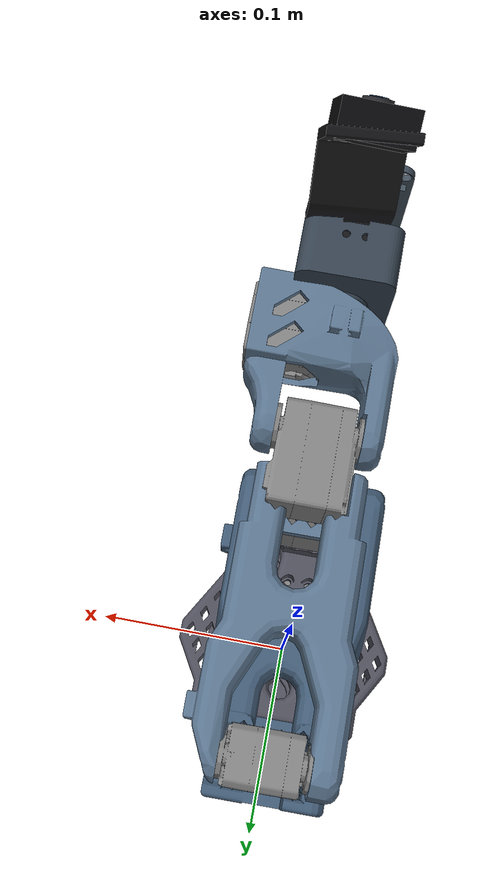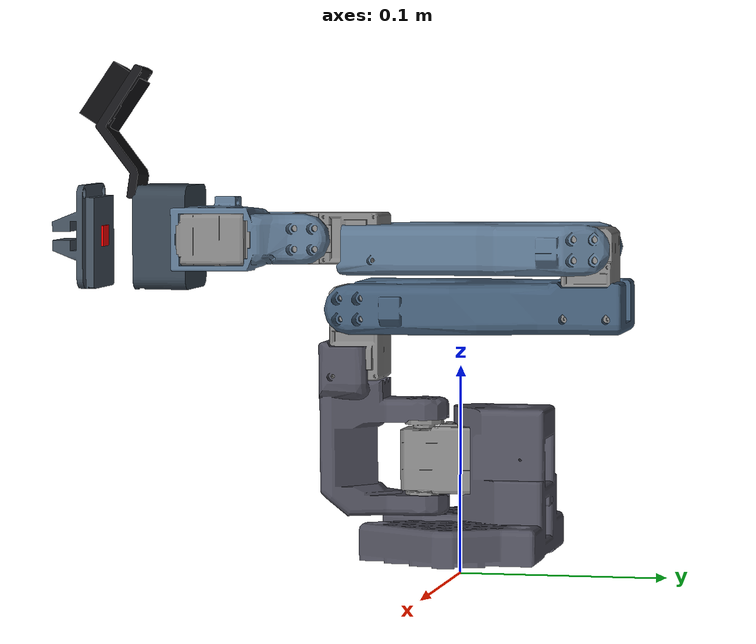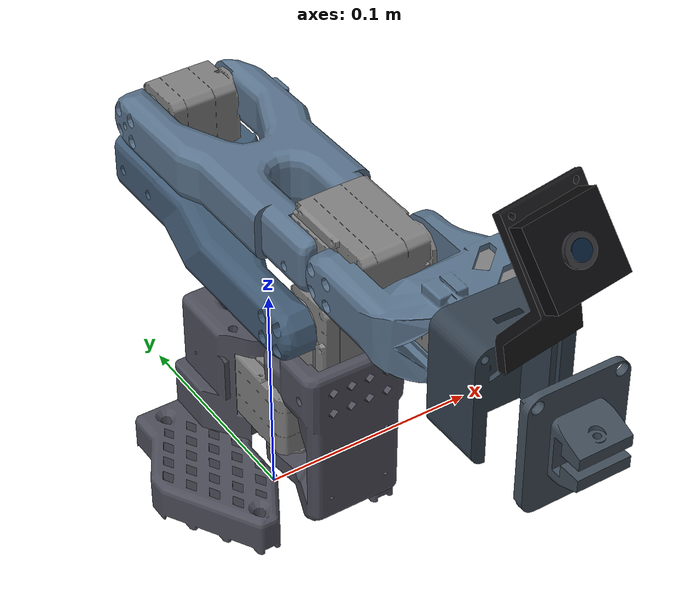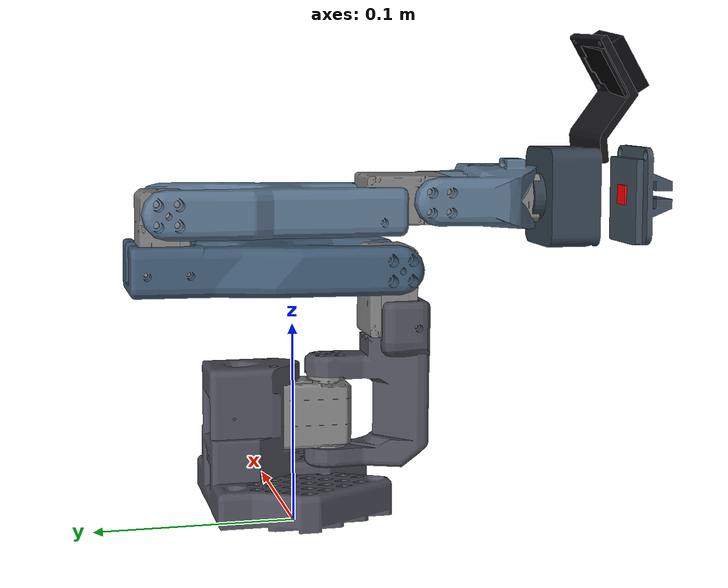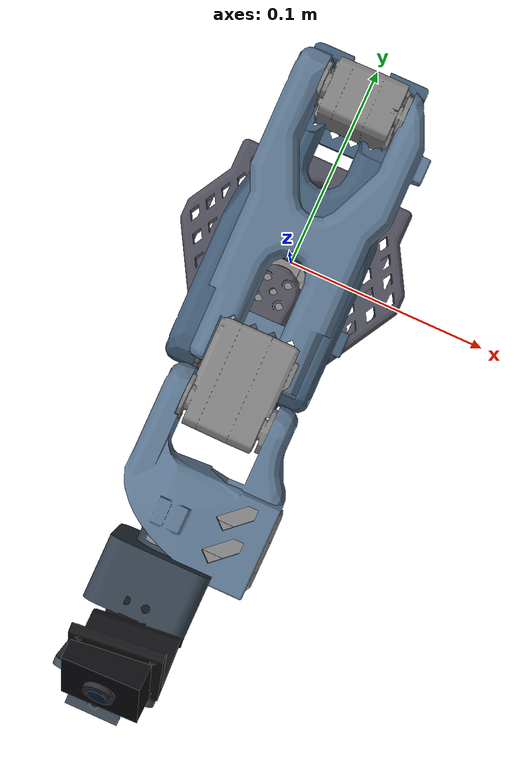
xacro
<?xml version="1.0"?>
<!--
SO-101 原机械臂的带末端相机副本。
原始 so101_arm.urdf.xacro 与 so101_arm_macro.urdf.xacro 保持不变。

用法:
  仅显示: xacro so101_arm_camera.urdf.xacro
  虚拟硬件: xacro so101_arm_camera.urdf.xacro use_fake_hardware:=true
-->
<robot name="so101_arm" xmlns:xacro="http://www.ros.org/wiki/xacro">

  <xacro:arg name="prefix" default=""/>
  <xacro:arg name="use_sim" default="false"/>
  <xacro:arg name="use_fake_hardware" default="false"/>

  <xacro:include filename="$(find so-101_description)/urdf/so101_arm_macro.urdf.xacro"/>
  <xacro:include filename="$(find so-101_description)/urdf/so101_camera_macro.urdf.xacro"/>
  <xacro:so101_arm prefix="$(arg prefix)"/>
  <xacro:so101_wrist_camera prefix="$(arg prefix)"/>

  <xacro:if value="$(arg use_fake_hardware)">
    <ros2_control name="FakeSystem" type="system">
      <hardware>
        <plugin>fake_components/GenericSystem</plugin>
      </hardware>
      <joint name="$(arg prefix)J1_Rotation">
        <command_interface name="position"/>
        <state_interface name="position"/>
        <state_interface name="velocity"/>
      </joint>
      <joint name="$(arg prefix)J2_Shoulder_Pitch">
        <command_interface name="position"/>
        <state_interface name="position"/>
        <state_interface name="velocity"/>
      </joint>
      <joint name="$(arg prefix)J3_Elbow_Pitch">
        <command_interface name="position"/>
        <state_interface name="position"/>
        <state_interface name="velocity"/>
      </joint>
      <joint name="$(arg prefix)J4_Wrist_Pitch">
        <command_interface name="position"/>
        <state_interface name="position"/>
        <state_interface name="velocity"/>
      </joint>
      <joint name="$(arg prefix)J5_Wrist_Roll">
        <command_interface name="position"/>
        <state_interface name="position"/>
        <state_interface name="velocity"/>
      </joint>
    </ros2_control>
  </xacro:if>

  <xacro:if value="$(arg use_sim)">
    <link name="world"/>
    <joint name="$(arg prefix)world_fixed" type="fixed">
      <origin xyz="0 0 0" rpy="0 0 0"/>
      <parent link="world"/>
      <child link="$(arg prefix)base_link"/>
    </joint>
  </xacro:if>

</robot>

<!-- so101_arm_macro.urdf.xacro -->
<robot xmlns:xacro="http://www.ros.org/wiki/xacro">

  <xacro:macro name="so101_arm" params="prefix:=''">
    <xacro:property name="body" value="package://so-101_description/urdf/so101_urdf/meshes"/>
    <xacro:property name="grip" value="package://so-101_description/urdf/end_effector_urdf/meshes"/>

    <!-- ===== base_footprint: 世界根节点 ===== -->
    <link name="${prefix}base_footprint"/>

    <!-- rpy="-1.5708 0 0" 使臂体从 CAD 水平转为竖直站立
         base_link Y → world -Z, base_link Z → world Y
         J1 轴用 base_link Y → world Z (yaw) -->
    <joint name="${prefix}base_orientation_joint" type="fixed">
      <origin xyz="0 0 0.045" rpy="-1.5707963 0 0"/>
      <parent link="${prefix}base_footprint"/>
      <child link="${prefix}base_link"/>
    </joint>

    <!-- base_link (CAD: base_link) — 底座              -->
    <link name="${prefix}base_link">
      <inertial>
        <origin xyz="-0.0000096 0.014495 0.012489" rpy="0 0 0"/>
        <mass value="0.14723"/>
        <inertia ixx="0.00013418" iyy="0.00017400" izz="0.00016382"
                 ixy="-0.00000001" ixz="0.00000004" iyz="0.00002337"/>
      </inertial>
      <visual>
        <origin xyz="0 0.036394 -0.010422" rpy="1.5707963 0 0"/>
        <geometry>
          <mesh filename="${body}/part_001_Wiring_holder_v1.stl" scale="0.001 0.001 0.001"/>
        </geometry>
        <material name="so101_dark"><color rgba="0.3 0.3 0.35 1.0"/></material>
      </visual>
      <collision>
        <origin xyz="0 0.036394 -0.010422" rpy="1.5707963 0 0"/>
        <geometry>
          <mesh filename="${body}/part_001_Wiring_holder_v1.stl" scale="0.001 0.001 0.001"/>
        </geometry>
      </collision>
    </link>

    <!-- shoulder (CAD: Rotation_Pitch) — 肩部          -->
    <!-- 嵌入舵机 mesh: part_086(舵机1) + part_085(舵机0)  -->
    <!-- 原始CAD: driver_1 和 driver_0 均在 [0,0,0] 叠加   -->
    <link name="${prefix}shoulder">
      <inertial>
        <origin xyz="-0.000258 -0.058004 -0.038910" rpy="0 0 0"/>
        <mass value="0.082067"/>
        <inertia ixx="0.00005789" iyy="0.00002429" izz="0.00005184"
                 ixy="-0.00000041" ixz="-0.00000001" iyz="-0.00000557"/>
      </inertial>
      <!-- 肩部主体 -->
      <visual>
        <origin xyz="0 0 0" rpy="1.5707963 0 0"/>
        <geometry><mesh filename="${body}/part_002_Wiring_holder_v1_1.stl" scale="0.001 0.001 0.001"/></geometry>
        <material name="so101_dark"><color rgba="0.3 0.3 0.35 1.0"/></material>
      </visual>
      <!-- 舵机1 (part_086): driver_1_joint origin [0,0,0] from shoulder -->
      <visual>
        <origin xyz="0 0 0" rpy="1.5707963 0 0"/>
        <geometry><mesh filename="${body}/part_086_1653192640.stl" scale="0.001 0.001 0.001"/></geometry>
        <material name="servo_grey"><color rgba="0.5 0.5 0.5 1.0"/></material>
      </visual>
      <!-- 舵机0 (part_085): driver_0_joint origin [0,0,0] from driver_1 = 同位置叠加 -->
      <visual>
        <origin xyz="0 0 0" rpy="1.5707963 0 0"/>
        <geometry><mesh filename="${body}/part_085_Extruded_1.stl" scale="0.001 0.001 0.001"/></geometry>
        <material name="servo_grey"><color rgba="0.5 0.5 0.5 1.0"/></material>
      </visual>
      <collision>
        <origin xyz="0 0 0" rpy="1.5707963 0 0"/>
        <geometry><mesh filename="${body}/part_002_Wiring_holder_v1_1.stl" scale="0.001 0.001 0.001"/></geometry>
      </collision>
    </link>

    <!-- J1: 底座 → 肩部 (yaw). 轴=Y 使经 base_footprint 旋转后绕世界 Z -->
    <joint name="${prefix}J1_Rotation" type="revolute">
      <origin xyz="0 0.036394 -0.010422" rpy="0 0 0"/>
      <parent link="${prefix}base_link"/>
      <child link="${prefix}shoulder"/>
      <axis xyz="0 1 0"/>
      <limit lower="-1.57" upper="1.57" effort="10" velocity="5"/>
      <dynamics damping="0.1"/>
    </joint>

    <!-- arm_upper (CAD: under_arm) — 大臂              -->
    <!-- 嵌入舵机 mesh: part_087(舵机2)                   -->
    <!-- CAD: driver_2_joint origin [0.0237,0.1198,0.0389] -->
    <link name="${prefix}arm_upper">
      <inertial>
        <origin xyz="0.025164 -0.000131 0.060915" rpy="0 0 0"/>
        <mass value="0.14017"/>
        <inertia ixx="0.00017080" iyy="0.00021880" izz="0.00006087"
                 ixy="-0.00000006" ixz="0.00000255" iyz="-0.00000104"/>
      </inertial>
      <!-- 大臂主体 -->
      <visual>
        <origin xyz="0.023656 0.119757 0.038947" rpy="1.5707963 0 0"/>
        <geometry><mesh filename="${body}/part_003_Wiring_holder_v1_1.stl" scale="0.001 0.001 0.001"/></geometry>
        <material name="so101_mid"><color rgba="0.25 0.35 0.45 1.0"/></material>
      </visual>
      <!-- 舵机2 (part_087): 在 driver_2_joint 处 [0.0237,0.1198,0.0389] -->
      <visual>
        <origin xyz="0.023656 0.119757 0.038947" rpy="1.5707963 0 0"/>
        <geometry><mesh filename="${body}/part_087_736125216.stl" scale="0.001 0.001 0.001"/></geometry>
        <material name="servo_grey"><color rgba="0.5 0.5 0.5 1.0"/></material>
      </visual>
      <collision>
        <origin xyz="0.023656 0.119757 0.038947" rpy="1.5707963 0 0"/>
        <geometry><mesh filename="${body}/part_003_Wiring_holder_v1_1.stl" scale="0.001 0.001 0.001"/></geometry>
      </collision>
    </link>

    <!-- J2: 肩部 → 大臂 (shoulder pitch) -->
    <joint name="${prefix}J2_Shoulder_Pitch" type="revolute">
      <origin xyz="-0.023656 -0.119757 -0.038947" rpy="0 0 0"/>
      <parent link="${prefix}shoulder"/>
      <child link="${prefix}arm_upper"/>
      <axis xyz="0.99996 -0.000076 0.008726"/>
      <limit lower="-0.5236" upper="2.9" effort="10" velocity="5"/>
      <dynamics damping="0.1"/>
    </joint>

    <!-- arm_lower (CAD: upper_arm) — 小臂              -->
    <!-- 嵌入舵机 mesh: part_088(舵机3)                   -->
    <!-- CAD: driver_3_joint origin [0.0139,0.1485,-0.0736] -->
    <link name="${prefix}arm_lower">
      <inertial>
        <origin xyz="0.017605 0.000673 -0.056114" rpy="0 0 0"/>
        <mass value="0.11085"/>
        <inertia ixx="0.00010673" iyy="0.00014075" izz="0.00004415"
                 ixy="0.00000023" ixz="0.00000165" iyz="0.00000278"/>
      </inertial>
      <!-- 小臂主体 -->
      <visual>
        <origin xyz="0.013895 0.148458 -0.073566" rpy="1.5707963 0 0"/>
        <geometry><mesh filename="${body}/part_004_Wiring_holder_v1_2.stl" scale="0.001 0.001 0.001"/></geometry>
        <material name="so101_light"><color rgba="0.35 0.45 0.55 1.0"/></material>
      </visual>
      <!-- 舵机3 (part_088): 驱动 J4, 在 driver_3_joint 处 -->
      <visual>
        <origin xyz="0.013895 0.148458 -0.073566" rpy="1.5707963 0 0"/>
        <geometry><mesh filename="${body}/part_088_1653192640_1.stl" scale="0.001 0.001 0.001"/></geometry>
        <material name="servo_grey"><color rgba="0.5 0.5 0.5 1.0"/></material>
      </visual>
      <collision>
        <origin xyz="0.013895 0.148458 -0.073566" rpy="1.5707963 0 0"/>
        <geometry><mesh filename="${body}/part_004_Wiring_holder_v1_2.stl" scale="0.001 0.001 0.001"/></geometry>
      </collision>
    </link>

    <!-- J3: 大臂 → 小臂 (elbow pitch) -->
    <joint name="${prefix}J3_Elbow_Pitch" type="revolute">
      <origin xyz="0.009761 -0.028701 0.112513" rpy="0 0 0"/>
      <parent link="${prefix}arm_upper"/>
      <child link="${prefix}arm_lower"/>
      <axis xyz="-0.99992 0.008802 -0.008650"/>
      <limit lower="0" upper="3.14" effort="10" velocity="5"/>
      <dynamics damping="0.1"/>
    </joint>

    <!-- wrist (CAD: Wrist_Roll_Pitch) — 腕部           -->
    <!-- J4 控制, 内含舵机4 (part_089) 在腕部空缺处        -->
    <!-- 参照 SO-100-arm Wrist_Pitch_Roll               -->
    <link name="${prefix}wrist">
      <inertial>
        <origin xyz="0.001941 -0.000195 -0.027095" rpy="0 0 0"/>
        <mass value="0.037719"/>
        <inertia ixx="0.00001646" iyy="0.00002939" izz="0.00001966"
                 ixy="0.00000022" ixz="0.00000233" iyz="-0.00000011"/>
      </inertial>
      <!-- 腕部主体 -->
      <visual>
        <origin xyz="-0.005534 0.152613 0.060418" rpy="1.5707963 0 0"/>
        <geometry><mesh filename="${body}/part_008_Wiring_holder_v1_1__2.stl" scale="0.001 0.001 0.001"/></geometry>
        <material name="so101_light"><color rgba="0.35 0.45 0.55 1.0"/></material>
      </visual>
      <!-- 舵机4 (part_089): J5 驱动舵机, 放在腕部空缺处, 类似 SO-100-arm 的 wrist 舵机 -->
      <visual>
        <origin xyz="-0.005534 0.152613 0.060418" rpy="1.5707963 0 0"/>
        <geometry><mesh filename="${body}/part_089_1653192640_2.stl" scale="0.001 0.001 0.001"/></geometry>
        <material name="servo_grey"><color rgba="0.5 0.5 0.5 1.0"/></material>
      </visual>
      <collision>
        <origin xyz="-0.005534 0.152613 0.060418" rpy="1.5707963 0 0"/>
        <geometry><mesh filename="${body}/part_008_Wiring_holder_v1_1__2.stl" scale="0.001 0.001 0.001"/></geometry>
      </collision>
    </link>

    <!-- J4: 小臂 → 腕部 (wrist pitch) -->
    <joint name="${prefix}J4_Wrist_Pitch" type="revolute">
      <origin xyz="0.019429 -0.004155 -0.133983" rpy="0 0 0"/>
      <parent link="${prefix}arm_lower"/>
      <child link="${prefix}wrist"/>
      <axis xyz="0.99854 -0.044303 0.030973"/>
      <limit lower="-1.57" upper="1.57" effort="10" velocity="5"/>
      <dynamics damping="0.1"/>
    </joint>

    <!-- J5: 腕部 → 末端执行器 (wrist roll, Y轴回转)      -->
    <!-- 参照 SO-100-arm Wrist_Roll:                    -->
    <!--   origin: xyz="0 -0.0601 0" rpy="0 1.57079 0" -->
    <!--   axis: xyz="0 1 0"                           -->
    <!-- 第5个舵机驱动末端执行器绕Y轴旋转                     -->

    <!-- gripper_base — 末端执行器夹爪                    -->
    <!-- 原始CAD rpy="1.5708 0 0"→先绕X-90°(rpy=0),     -->
    <!-- 再绕Z逆时针90° (rpy="0 0 1.5708")               -->
    <link name="${prefix}gripper_base">
      <inertial>
        <origin xyz="-0.000942 -0.005227 -0.000001" rpy="0 0 0"/>
        <mass value="0.053358"/>
        <inertia ixx="0.00003626" iyy="0.00001901" izz="0.00003788"
                 ixy="-0.00000155" ixz="-0.00000000" iyz="-0.00000000"/>
      </inertial>
      <!-- 夹爪主体: 绕Z逆时针90° + 原始CAD rpy补偿 -->
      <visual>
        <origin xyz="0 0 0" rpy="0 0 1.5707963"/>
        <geometry><mesh filename="${grip}/part_002_solid_002.stl" scale="0.001 0.001 0.001"/></geometry>
        <material name="gripper_dark"><color rgba="0.2 0.25 0.3 1.0"/></material>
      </visual>
      <visual>
        <origin xyz="0 0 0" rpy="0 0 1.5707963"/>
        <geometry><mesh filename="${grip}/part_001_solid_001.stl" scale="0.001 0.001 0.001"/></geometry>
        <material name="gripper_light"><color rgba="0.25 0.3 0.35 1.0"/></material>
      </visual>
      <collision>
        <origin xyz="0 0 0" rpy="0 0 1.5707963"/>
        <geometry><mesh filename="${grip}/part_002_solid_002.stl" scale="0.001 0.001 0.001"/></geometry>
      </collision>
    </link>

    <!-- J5: wrist → gripper_base, 绕Y轴回转, 参照 SO-100-arm Wrist_Roll
         末端执行器平移到第5个舵机(part_089)右侧 (wrist X+) -->
    <joint name="${prefix}J5_Wrist_Roll" type="revolute">
      <origin xyz="0 0 -0.059" rpy="0 0 0"/>
      <parent link="${prefix}wrist"/>
      <child link="${prefix}gripper_base"/>
      <axis xyz="0 0 1"/>
      <limit lower="-3.14" upper="3.14" effort="10" velocity="5"/>
      <dynamics damping="0.1"/>
    </joint>

    <!-- end_effector — 工具点 (TCP)                    -->
    <link name="${prefix}end_effector">
      <visual>
        <origin xyz="0 0 0" rpy="0 0 0"/>
        <geometry><box size="0.01 0.01 0.01"/></geometry>
        <material name="red"><color rgba="1.0 0.0 0.0 1.0"/></material>
      </visual>
    </link>

    <!-- TCP 沿夹爪开口方向 -->
    <joint name="${prefix}end_effector_joint" type="fixed">
      <parent link="${prefix}gripper_base"/>
      <child link="${prefix}end_effector"/>
      <origin xyz="0 0 -0.05" rpy="0 0 0"/>
    </joint>

  </xacro:macro>
</robot>

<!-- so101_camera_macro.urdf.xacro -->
<robot xmlns:xacro="http://www.ros.org/wiki/xacro">

  <xacro:macro name="so101_wrist_camera" params="prefix:=''">
    <xacro:property
      name="camera_holder_mesh"
      value="package://so-101_description/urdf/cam_holder/part_003_surface_shell_003.stl"/>

    <!-- 原始相机支架。源 STL 经此变换后以安装中心为原点，尺寸约 60 x 56 x 39 mm。 -->
    <link name="${prefix}cam_holder">
      <inertial>
        <origin xyz="0.008826136 -0.0073716901 0.00011928665" rpy="0 0 0"/>
        <mass value="0.02"/>
        <inertia
          ixx="6.7854269e-06" iyy="6.2217147e-06" izz="8.8277506e-06"
          ixy="-3.4346284e-06" ixz="2.0490557e-07" iyz="1.2484235e-07"/>
      </inertial>
      <visual>
        <origin xyz="0.060129397 -0.021552011 0.011971371" rpy="1.5707963 0 0"/>
        <geometry>
          <mesh filename="${camera_holder_mesh}" scale="0.001 0.001 0.001"/>
        </geometry>
        <material name="camera_holder_black">
          <color rgba="0.08 0.08 0.09 1.0"/>
        </material>
      </visual>
      <collision>
        <origin xyz="0.060129397 -0.021552011 0.011971371" rpy="1.5707963 0 0"/>
        <geometry>
          <mesh filename="${camera_holder_mesh}" scale="0.001 0.001 0.001"/>
        </geometry>
      </collision>
    </link>

    <!--
    中间安装坐标系：
      1. cam_holder_mount_joint 保留当前已经调好的平移与 pitch；
      2. cam_holder_joint 负责支架相对中间坐标系的局部 Z 轴旋转。

    分成两个 fixed joint 可避免在 pitch 接近 90° 时继续混合 RPY 引起的轴重合。
    -->
    <link name="${prefix}cam_holder_mount_frame"/>

    <joint name="${prefix}cam_holder_mount_joint" type="fixed">
      <parent link="${prefix}gripper_base"/>
      <child link="${prefix}cam_holder_mount_frame"/>
      <origin xyz="0.003 -0.045 0.0" rpy="0 1.6 0.0"/>
    </joint>

    <joint name="${prefix}cam_holder_joint" type="fixed">
      <parent link="${prefix}cam_holder_mount_frame"/>
      <child link="${prefix}cam_holder"/>
      <origin xyz="0.02 -0.0 0" rpy="0 0 1"/>
    </joint>

    <!-- 恢复已确认正确的相机盒体外观和安装状态。 -->
    <link name="${prefix}wrist_camera_link">
      <inertial>
        <origin xyz="-0.012 0 0" rpy="0 0 0"/>
        <mass value="0.015"/>
        <inertia
          ixx="1.525e-06" iyy="2.000e-06" izz="9.650e-07"
          ixy="0" ixz="0" iyz="0"/>
      </inertial>
      <visual name="camera_body">
        <origin xyz="-0.012 0 0" rpy="0 0 0"/>
        <geometry>
          <box size="0.03 0.014 0.03"/>
        </geometry>
        <material name="camera_body_black">
          <color rgba="0.04 0.04 0.05 1.0"/>
        </material>
      </visual>
      <visual name="camera_front">
        <origin xyz="-0.012 -0.008 0" rpy="1.5707963 0 0"/>
        <geometry>
          <cylinder radius="0.006" length="0.002"/>
        </geometry>
        <material name="camera_front_grey">
          <color rgba="0.18 0.18 0.20 1.0"/>
        </material>
      </visual>
      <visual name="camera_lens">
        <origin xyz="-0.012 -0.0093 0" rpy="1.5707963 0 0"/>
        <geometry>
          <cylinder radius="0.0038" length="0.0006"/>
        </geometry>
        <material name="camera_lens_blue">
          <color rgba="0.03 0.12 0.22 1.0"/>
        </material>
      </visual>
      <collision>
        <origin xyz="-0.012 0 0" rpy="0 0 0"/>
        <geometry>
          <box size="0.024 0.014 0.032"/>
        </geometry>
      </collision>
    </link>

    <joint name="${prefix}wrist_camera_joint" type="fixed">
      <parent link="${prefix}cam_holder"/>
      <child link="${prefix}wrist_camera_link"/>
      <origin xyz="-0.006 -0.0285 -0.0125" rpy="0 1.43 0"/>
    </joint>

    <!--
    光心与镜头中心重合。盒体坐标中的朝外方向为 -Y；
    pitch=-0.1407963 补偿整条安装链在零位产生的 8.07° 画面滚转；
    optical frame 使用 ROS 标准：+Z 前、+X 右、+Y 下。
    -->
    <link name="${prefix}wrist_camera_optical_frame"/>
    <joint name="${prefix}wrist_camera_optical_joint" type="fixed">
      <parent link="${prefix}wrist_camera_link"/>
      <child link="${prefix}wrist_camera_optical_frame"/>
      <origin xyz="-0.012 -0.0093 0" rpy="-1.5707963 -0.1407963 -3.1415927"/>
    </joint>
  </xacro:macro>

</robot>
